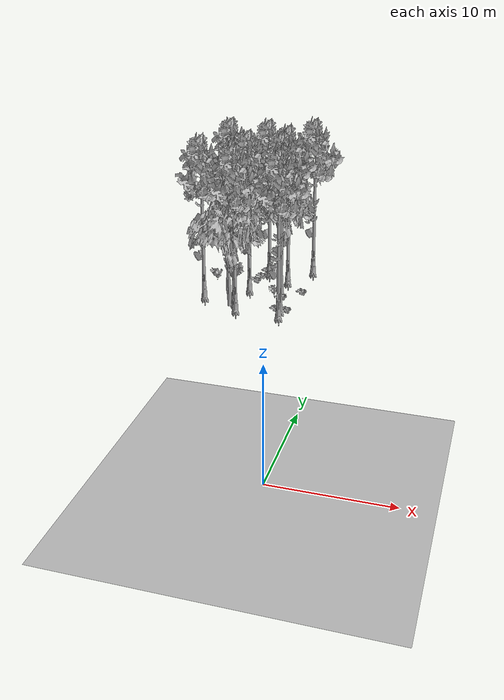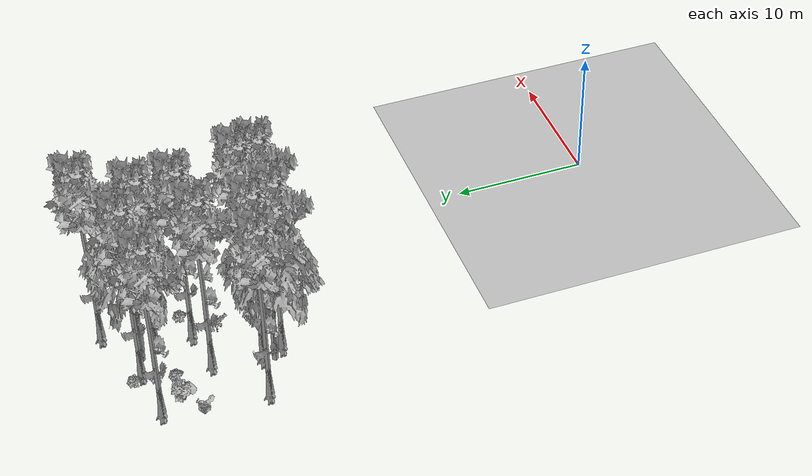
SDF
<sdf version="1.7">
 <world name="default">
  <model name="ground_plane">
   <static>1</static>
   <link name="link">
    <collision name="collision">
     <pose>-50 0 0 0 -0 0</pose>
     <geometry><plane><normal>0 0 1</normal><size>80 80</size></plane></geometry>
     <surface><contact><ode><min_depth>0.01</min_depth><max_vel>0</max_vel></ode></contact></surface>
    </collision>
    <visual name="grass">
     <cast_shadows>0</cast_shadows>
     <geometry>
      <mesh>
       <scale>0.46714285714285714 0.46714285714285714 0.1</scale>
       <uri>file://grass_plane/meshes/grass_plane.dae</uri>
      </mesh>
     </geometry>
    </visual>
   </link>
  </model>
  <model name="Tree 114">
   <static>1</static>
   <pose>-14.353113473692307 37.1054661972927 0 1.57079 -0 0</pose>
   <link name="link">
    <collision name="collision">
     <geometry><mesh><scale>3.5 5 3.5</scale><uri>model://tree_9/meshes/tree_9.obj</uri></mesh></geometry>
    </collision>
    <visual name="visual">
     <geometry><mesh><scale>3.5 5 3.5</scale><uri>model://tree_9/meshes/tree_9.obj</uri></mesh></geometry>
    </visual>
   </link>
  </model>
  <model name="Tree 165">
   <static>1</static>
   <pose>-7.7135416816277385 35.884955190576264 0 1.57079 -0 0</pose>
   <link name="link">
    <collision name="collision">
     <geometry><mesh><scale>3.5 5 3.5</scale><uri>model://tree_9/meshes/tree_9.obj</uri></mesh></geometry>
    </collision>
    <visual name="visual">
     <geometry><mesh><scale>3.5 5 3.5</scale><uri>model://tree_9/meshes/tree_9.obj</uri></mesh></geometry>
    </visual>
   </link>
  </model>
  <model name="Tree 174">
   <static>1</static>
   <pose>-5.7064991707027914 39.28791819521746 0 1.57079 -0 0</pose>
   <link name="link">
    <collision name="collision">
     <geometry><mesh><scale>3.5 5 3.5</scale><uri>model://tree_9/meshes/tree_9.obj</uri></mesh></geometry>
    </collision>
    <visual name="visual">
     <geometry><mesh><scale>3.5 5 3.5</scale><uri>model://tree_9/meshes/tree_9.obj</uri></mesh></geometry>
    </visual>
   </link>
  </model>
  <model name="Tree 284">
   <static>1</static>
   <pose>-15.171362112043475 29.74108071697124 0 1.57079 -0 0</pose>
   <link name="link">
    <collision name="collision">
     <geometry><mesh><scale>3.5 5 3.5</scale><uri>model://tree_9/meshes/tree_9.obj</uri></mesh></geometry>
    </collision>
    <visual name="visual">
     <geometry><mesh><scale>3.5 5 3.5</scale><uri>model://tree_9/meshes/tree_9.obj</uri></mesh></geometry>
    </visual>
   </link>
  </model>
  <model name="Tree 361">
   <static>1</static>
   <pose>-6.647200409275719 28.6701209118216 0 1.57079 -0 0</pose>
   <link name="link">
    <collision name="collision">
     <geometry><mesh><scale>3.5 5 3.5</scale><uri>model://tree_9/meshes/tree_9.obj</uri></mesh></geometry>
    </collision>
    <visual name="visual">
     <geometry><mesh><scale>3.5 5 3.5</scale><uri>model://tree_9/meshes/tree_9.obj</uri></mesh></geometry>
    </visual>
   </link>
  </model>
  <model name="Tree 407">
   <static>1</static>
   <pose>-8.931852999253643 37.095348363334466 0 1.57079 -0 0</pose>
   <link name="link">
    <collision name="collision">
     <geometry><mesh><scale>3.5 5 3.5</scale><uri>model://tree_2/meshes/tree_2.obj</uri></mesh></geometry>
    </collision>
    <visual name="visual">
     <geometry><mesh><scale>3.5 5 3.5</scale><uri>model://tree_2/meshes/tree_2.obj</uri></mesh></geometry>
    </visual>
   </link>
  </model>
  <model name="Tree 436">
   <static>1</static>
   <pose>-6.424512831950707 27.27310413207981 0 1.57079 -0 0</pose>
   <link name="link">
    <collision name="collision">
     <geometry><mesh><scale>3.5 5 3.5</scale><uri>model://tree_9/meshes/tree_9.obj</uri></mesh></geometry>
    </collision>
    <visual name="visual">
     <geometry><mesh><scale>3.5 5 3.5</scale><uri>model://tree_9/meshes/tree_9.obj</uri></mesh></geometry>
    </visual>
   </link>
  </model>
  <model name="Tree 509">
   <static>1</static>
   <pose>-12.069791017372832 28.384573264172786 0 1.57079 -0 0</pose>
   <link name="link">
    <collision name="collision">
     <geometry><mesh><scale>3.5 5 3.5</scale><uri>model://tree_2/meshes/tree_2.obj</uri></mesh></geometry>
    </collision>
    <visual name="visual">
     <geometry><mesh><scale>3.5 5 3.5</scale><uri>model://tree_2/meshes/tree_2.obj</uri></mesh></geometry>
    </visual>
   </link>
  </model>
  <model name="Tree 519">
   <static>1</static>
   <pose>-11.116786565960556 32.71321489252166 0 1.57079 -0 0</pose>
   <link name="link">
    <collision name="collision">
     <geometry><mesh><scale>3.5 5 3.5</scale><uri>model://tree_9/meshes/tree_9.obj</uri></mesh></geometry>
    </collision>
    <visual name="visual">
     <geometry><mesh><scale>3.5 5 3.5</scale><uri>model://tree_9/meshes/tree_9.obj</uri></mesh></geometry>
    </visual>
   </link>
  </model>
  <model name="Tree 523">
   <static>1</static>
   <pose>-11.076072234903364 27.61372358885528 0 1.57079 -0 0</pose>
   <link name="link">
    <collision name="collision">
     <geometry><mesh><scale>3.5 5 3.5</scale><uri>model://tree_9/meshes/tree_9.obj</uri></mesh></geometry>
    </collision>
    <visual name="visual">
     <geometry><mesh><scale>3.5 5 3.5</scale><uri>model://tree_9/meshes/tree_9.obj</uri></mesh></geometry>
    </visual>
   </link>
  </model>
  <model name="Tree 537">
   <static>1</static>
   <pose>-11.720630546154108 29.212698049282224 0 1.57079 -0 0</pose>
   <link name="link">
    <collision name="collision">
     <geometry><mesh><scale>3.5 5 3.5</scale><uri>model://tree_9/meshes/tree_9.obj</uri></mesh></geometry>
    </collision>
    <visual name="visual">
     <geometry><mesh><scale>3.5 5 3.5</scale><uri>model://tree_9/meshes/tree_9.obj</uri></mesh></geometry>
    </visual>
   </link>
  </model>
  <model name="Tree 541">
   <static>1</static>
   <pose>-7.759071918374719 33.23156686646543 0 1.57079 -0 0</pose>
   <link name="link">
    <collision name="collision">
     <geometry><mesh><scale>3.5 5 3.5</scale><uri>model://tree_9/meshes/tree_9.obj</uri></mesh></geometry>
    </collision>
    <visual name="visual">
     <geometry><mesh><scale>3.5 5 3.5</scale><uri>model://tree_9/meshes/tree_9.obj</uri></mesh></geometry>
    </visual>
   </link>
  </model>
  <model name="Tree 611">
   <static>1</static>
   <pose>-10.276320790822773 37.50981620230404 0 1.57079 -0 0</pose>
   <link name="link">
    <collision name="collision">
     <geometry><mesh><scale>3.5 5 3.5</scale><uri>model://tree_9/meshes/tree_9.obj</uri></mesh></geometry>
    </collision>
    <visual name="visual">
     <geometry><mesh><scale>3.5 5 3.5</scale><uri>model://tree_9/meshes/tree_9.obj</uri></mesh></geometry>
    </visual>
   </link>
  </model>
  <model name="Bush 38">
   <static>1</static>
   <pose>-11.185844662869993 35.28588029549297 0 1.57079 -0 0</pose>
   <link name="link">
    <collision name="collision">
     <geometry><mesh><scale>2 2 2</scale><uri>model://bush_2/meshes/bush_2.obj</uri></mesh></geometry>
     <surface><contact><collide_without_contact>false</collide_without_contact></contact></surface>
    </collision>
    <visual name="visual">
     <geometry><mesh><scale>2 2 2</scale><uri>model://bush_2/meshes/bush_2.obj</uri></mesh></geometry>
    </visual>
   </link>
  </model>
  <model name="Bush 62">
   <static>1</static>
   <pose>-6.079693191314554 28.86148966598637 0 1.57079 -0 0</pose>
   <link name="link">
    <collision name="collision">
     <geometry><mesh><scale>2 2 2</scale><uri>model://bush_2/meshes/bush_2.obj</uri></mesh></geometry>
     <surface><contact><collide_without_contact>false</collide_without_contact></contact></surface>
    </collision>
    <visual name="visual">
     <geometry><mesh><scale>2 2 2</scale><uri>model://bush_2/meshes/bush_2.obj</uri></mesh></geometry>
    </visual>
   </link>
  </model>
  <model name="Bush 86">
   <static>1</static>
   <pose>-7.98713494572452 31.47898413724519 0 1.57079 -0 0</pose>
   <link name="link">
    <collision name="collision">
     <geometry><mesh><scale>2 2 2</scale><uri>model://bush_5/meshes/bush_5.obj</uri></mesh></geometry>
     <surface><contact><collide_without_contact>false</collide_without_contact></contact></surface>
    </collision>
    <visual name="visual">
     <geometry><mesh><scale>2 2 2</scale><uri>model://bush_5/meshes/bush_5.obj</uri></mesh></geometry>
    </visual>
   </link>
  </model>
  <model name="Bush 110">
   <static>1</static>
   <pose>-10.744487923468995 38.12173979917347 0 1.57079 -0 0</pose>
   <link name="link">
    <collision name="collision">
     <geometry><mesh><scale>2 2 2</scale><uri>model://bush_2/meshes/bush_2.obj</uri></mesh></geometry>
     <surface><contact><collide_without_contact>false</collide_without_contact></contact></surface>
    </collision>
    <visual name="visual">
     <geometry><mesh><scale>2 2 2</scale><uri>model://bush_2/meshes/bush_2.obj</uri></mesh></geometry>
    </visual>
   </link>
  </model>
  <model name="Bush 172">
   <static>1</static>
   <pose>-15.307200236716312 34.35782263034267 0 1.57079 -0 0</pose>
   <link name="link">
    <collision name="collision">
     <geometry><mesh><scale>2 2 2</scale><uri>model://bush_0/meshes/bush_0.obj</uri></mesh></geometry>
     <surface><contact><collide_without_contact>false</collide_without_contact></contact></surface>
    </collision>
    <visual name="visual">
     <geometry><mesh><scale>2 2 2</scale><uri>model://bush_0/meshes/bush_0.obj</uri></mesh></geometry>
    </visual>
   </link>
  </model>
  <model name="Bush 317">
   <static>1</static>
   <pose>-7.200946394254007 28.84906640465536 0 1.57079 -0 0</pose>
   <link name="link">
    <collision name="collision">
     <geometry><mesh><scale>2 2 2</scale><uri>model://bush_2/meshes/bush_2.obj</uri></mesh></geometry>
     <surface><contact><collide_without_contact>false</collide_without_contact></contact></surface>
    </collision>
    <visual name="visual">
     <geometry><mesh><scale>2 2 2</scale><uri>model://bush_2/meshes/bush_2.obj</uri></mesh></geometry>
    </visual>
   </link>
  </model>
  <model name="Bush 365">
   <static>1</static>
   <pose>-7.33696164854009 31.817192190831022 0 1.57079 -0 0</pose>
   <link name="link">
    <collision name="collision">
     <geometry><mesh><scale>2 2 2</scale><uri>model://bush_2/meshes/bush_2.obj</uri></mesh></geometry>
     <surface><contact><collide_without_contact>false</collide_without_contact></contact></surface>
    </collision>
    <visual name="visual">
     <geometry><mesh><scale>2 2 2</scale><uri>model://bush_2/meshes/bush_2.obj</uri></mesh></geometry>
    </visual>
   </link>
  </model>
  <model name="Bush 395">
   <static>1</static>
   <pose>-10.919762035515017 36.577713684768256 0 1.57079 -0 0</pose>
   <link name="link">
    <collision name="collision">
     <geometry><mesh><scale>2 2 2</scale><uri>model://bush_2/meshes/bush_2.obj</uri></mesh></geometry>
     <surface><contact><collide_without_contact>false</collide_without_contact></contact></surface>
    </collision>
    <visual name="visual">
     <geometry><mesh><scale>2 2 2</scale><uri>model://bush_2/meshes/bush_2.obj</uri></mesh></geometry>
    </visual>
   </link>
  </model>
  <model name="Bush 443">
   <static>1</static>
   <pose>-5.618059121751479 33.57757121609184 0 1.57079 -0 0</pose>
   <link name="link">
    <collision name="collision">
     <geometry><mesh><scale>2 2 2</scale><uri>model://bush_2/meshes/bush_2.obj</uri></mesh></geometry>
     <surface><contact><collide_without_contact>false</collide_without_contact></contact></surface>
    </collision>
    <visual name="visual">
     <geometry><mesh><scale>2 2 2</scale><uri>model://bush_2/meshes/bush_2.obj</uri></mesh></geometry>
    </visual>
   </link>
  </model>
  <model name="Bush 629">
   <static>1</static>
   <pose>-13.573525792756556 35.28891011926024 0 1.57079 -0 0</pose>
   <link name="link">
    <collision name="collision">
     <geometry><mesh><scale>2 2 2</scale><uri>model://bush_1/meshes/bush_1.obj</uri></mesh></geometry>
     <surface><contact><collide_without_contact>false</collide_without_contact></contact></surface>
    </collision>
    <visual name="visual">
     <geometry><mesh><scale>2 2 2</scale><uri>model://bush_1/meshes/bush_1.obj</uri></mesh></geometry>
    </visual>
   </link>
  </model>
 </world>
</sdf>
